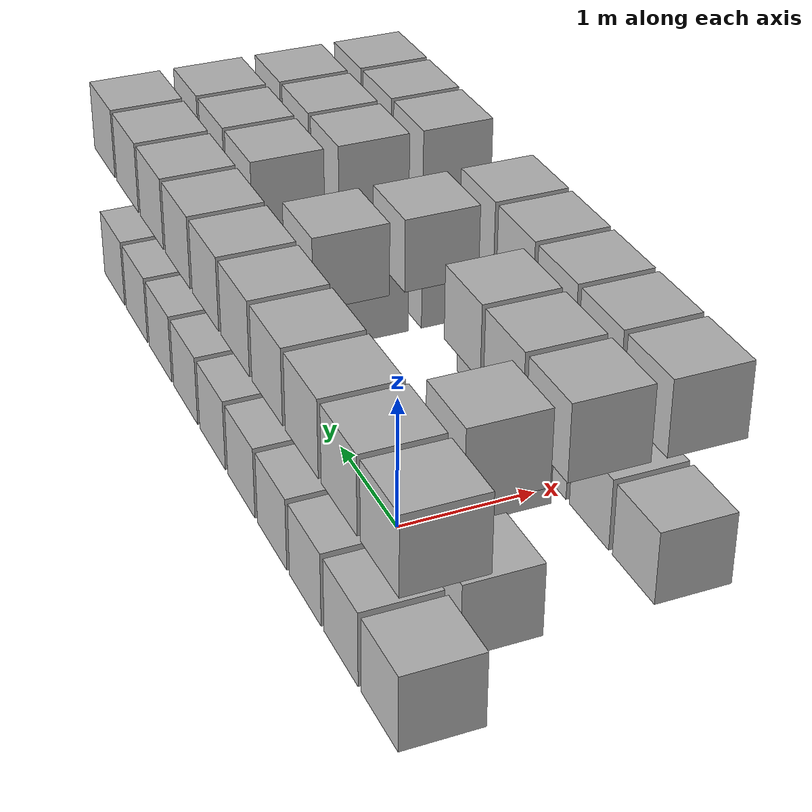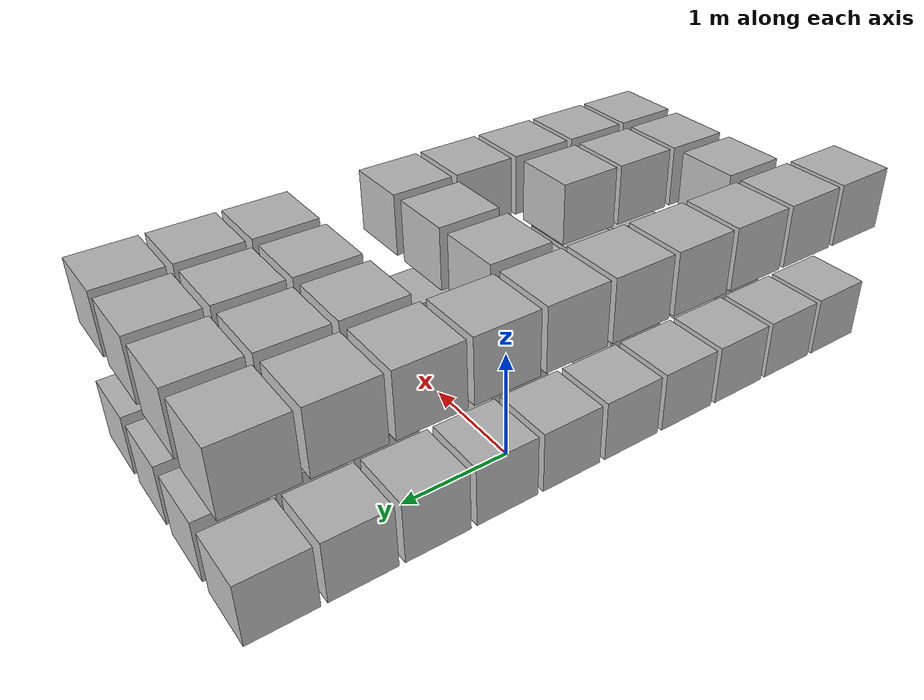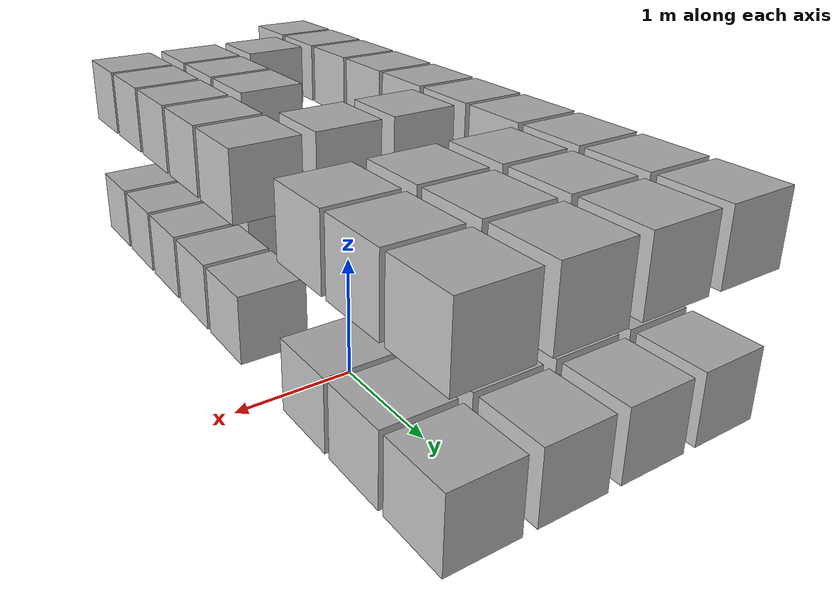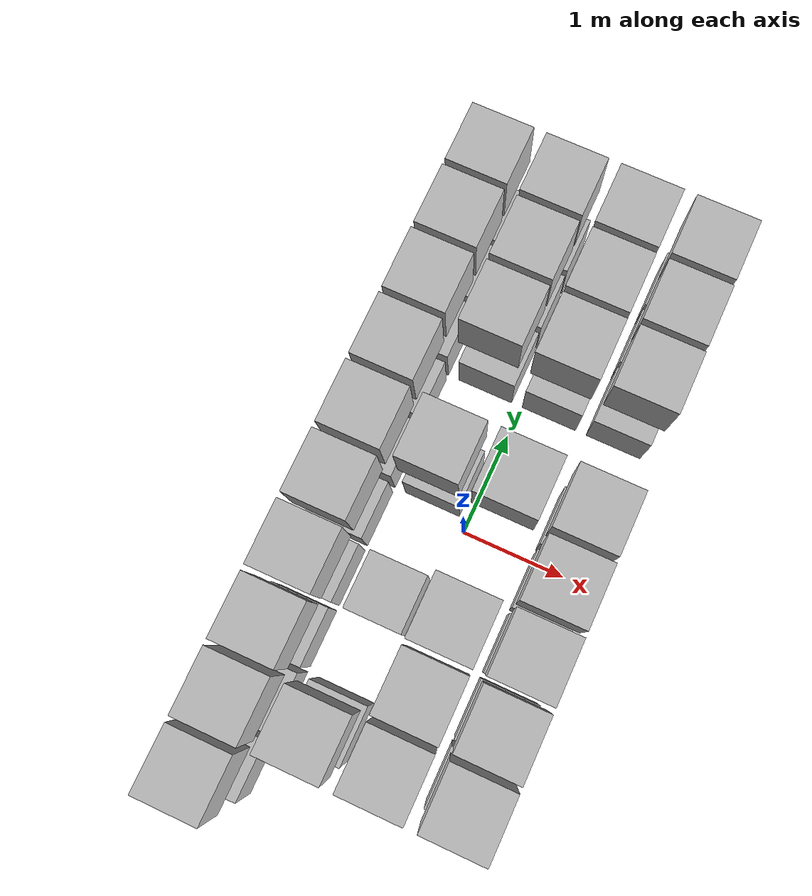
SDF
<sdf version="1.5">
 <world name="default">
  <include><uri>model://sun</uri></include>
  <include><uri>model://block50</uri><pose>-0.9 -2.4545454545454546 1.0 0 0 0</pose></include>
  <include><uri>model://block50</uri><pose>-0.9 -1.9090909090909092 1.0 0 0 0</pose></include>
  <include><uri>model://block50</uri><pose>-0.30000000000000004 -1.9090909090909092 1.0 0 0 0</pose></include>
  <include><uri>model://block50</uri><pose>0.8999999999999999 -1.9090909090909092 1.0 0 0 0</pose></include>
  <include><uri>model://block50</uri><pose>-0.9 -1.3636363636363638 1.0 0 0 0</pose></include>
  <include><uri>model://block50</uri><pose>0.8999999999999999 -1.3636363636363638 1.0 0 0 0</pose></include>
  <include><uri>model://block50</uri><pose>-0.9 -0.8181818181818183 1.0 0 0 0</pose></include>
  <include><uri>model://block50</uri><pose>-0.30000000000000004 -0.8181818181818183 1.0 0 0 0</pose></include>
  <include><uri>model://block50</uri><pose>0.2999999999999998 -0.8181818181818183 1.0 0 0 0</pose></include>
  <include><uri>model://block50</uri><pose>0.8999999999999999 -0.8181818181818183 1.0 0 0 0</pose></include>
  <include><uri>model://block50</uri><pose>-0.9 -0.27272727272727293 1.0 0 0 0</pose></include>
  <include><uri>model://block50</uri><pose>0.8999999999999999 -0.27272727272727293 1.0 0 0 0</pose></include>
  <include><uri>model://block50</uri><pose>-0.9 0.2727272727272725 1.0 0 0 0</pose></include>
  <include><uri>model://block50</uri><pose>-0.30000000000000004 0.2727272727272725 1.0 0 0 0</pose></include>
  <include><uri>model://block50</uri><pose>0.8999999999999999 0.2727272727272725 1.0 0 0 0</pose></include>
  <include><uri>model://block50</uri><pose>-0.9 0.8181818181818179 1.0 0 0 0</pose></include>
  <include><uri>model://block50</uri><pose>-0.9 1.3636363636363633 1.0 0 0 0</pose></include>
  <include><uri>model://block50</uri><pose>-0.30000000000000004 1.3636363636363633 1.0 0 0 0</pose></include>
  <include><uri>model://block50</uri><pose>0.2999999999999998 1.3636363636363633 1.0 0 0 0</pose></include>
  <include><uri>model://block50</uri><pose>0.8999999999999999 1.3636363636363633 1.0 0 0 0</pose></include>
  <include><uri>model://block50</uri><pose>-0.9 1.9090909090909083 1.0 0 0 0</pose></include>
  <include><uri>model://block50</uri><pose>-0.30000000000000004 1.9090909090909083 1.0 0 0 0</pose></include>
  <include><uri>model://block50</uri><pose>0.2999999999999998 1.9090909090909083 1.0 0 0 0</pose></include>
  <include><uri>model://block50</uri><pose>0.8999999999999999 1.9090909090909083 1.0 0 0 0</pose></include>
  <include><uri>model://block50</uri><pose>-0.9 2.454545454545454 1.0 0 0 0</pose></include>
  <include><uri>model://block50</uri><pose>-0.30000000000000004 2.454545454545454 1.0 0 0 0</pose></include>
  <include><uri>model://block50</uri><pose>0.2999999999999998 2.454545454545454 1.0 0 0 0</pose></include>
  <include><uri>model://block50</uri><pose>0.8999999999999999 2.454545454545454 1.0 0 0 0</pose></include>
  <include><uri>model://block50</uri><pose>-0.9 -2.4545454545454546 2.0 0 0 0</pose></include>
  <include><uri>model://block50</uri><pose>-0.9 -1.9090909090909092 2.0 0 0 0</pose></include>
  <include><uri>model://block50</uri><pose>-0.30000000000000004 -1.9090909090909092 2.0 0 0 0</pose></include>
  <include><uri>model://block50</uri><pose>0.2999999999999998 -1.9090909090909092 2.0 0 0 0</pose></include>
  <include><uri>model://block50</uri><pose>0.8999999999999999 -1.9090909090909092 2.0 0 0 0</pose></include>
  <include><uri>model://block50</uri><pose>-0.9 -1.3636363636363638 2.0 0 0 0</pose></include>
  <include><uri>model://block50</uri><pose>0.2999999999999998 -1.3636363636363638 2.0 0 0 0</pose></include>
  <include><uri>model://block50</uri><pose>0.8999999999999999 -1.3636363636363638 2.0 0 0 0</pose></include>
  <include><uri>model://block50</uri><pose>-0.9 -0.8181818181818183 2.0 0 0 0</pose></include>
  <include><uri>model://block50</uri><pose>0.2999999999999998 -0.8181818181818183 2.0 0 0 0</pose></include>
  <include><uri>model://block50</uri><pose>0.8999999999999999 -0.8181818181818183 2.0 0 0 0</pose></include>
  <include><uri>model://block50</uri><pose>-0.9 -0.27272727272727293 2.0 0 0 0</pose></include>
  <include><uri>model://block50</uri><pose>0.8999999999999999 -0.27272727272727293 2.0 0 0 0</pose></include>
  <include><uri>model://block50</uri><pose>-0.9 0.2727272727272725 2.0 0 0 0</pose></include>
  <include><uri>model://block50</uri><pose>-0.30000000000000004 0.2727272727272725 2.0 0 0 0</pose></include>
  <include><uri>model://block50</uri><pose>0.2999999999999998 0.2727272727272725 2.0 0 0 0</pose></include>
  <include><uri>model://block50</uri><pose>0.8999999999999999 0.2727272727272725 2.0 0 0 0</pose></include>
  <include><uri>model://block50</uri><pose>-0.9 0.8181818181818179 2.0 0 0 0</pose></include>
  <include><uri>model://block50</uri><pose>-0.9 1.3636363636363633 2.0 0 0 0</pose></include>
  <include><uri>model://block50</uri><pose>-0.30000000000000004 1.3636363636363633 2.0 0 0 0</pose></include>
  <include><uri>model://block50</uri><pose>0.2999999999999998 1.3636363636363633 2.0 0 0 0</pose></include>
  <include><uri>model://block50</uri><pose>0.8999999999999999 1.3636363636363633 2.0 0 0 0</pose></include>
  <include><uri>model://block50</uri><pose>-0.9 1.9090909090909083 2.0 0 0 0</pose></include>
  <include><uri>model://block50</uri><pose>-0.30000000000000004 1.9090909090909083 2.0 0 0 0</pose></include>
  <include><uri>model://block50</uri><pose>0.2999999999999998 1.9090909090909083 2.0 0 0 0</pose></include>
  <include><uri>model://block50</uri><pose>0.8999999999999999 1.9090909090909083 2.0 0 0 0</pose></include>
  <include><uri>model://block50</uri><pose>-0.9 2.454545454545454 2.0 0 0 0</pose></include>
  <include><uri>model://block50</uri><pose>-0.30000000000000004 2.454545454545454 2.0 0 0 0</pose></include>
  <include><uri>model://block50</uri><pose>0.2999999999999998 2.454545454545454 2.0 0 0 0</pose></include>
  <include><uri>model://block50</uri><pose>0.8999999999999999 2.454545454545454 2.0 0 0 0</pose></include>
  <physics name="default_physics" default="0" type="ode">
   <gravity>0 0 -9.8066</gravity>
   <ode>
    <solver>
     <type>quick</type>
     <iters>30</iters>
     <sor>1.3</sor>
     <use_dynamic_moi_rescaling>0</use_dynamic_moi_rescaling>
    </solver>
    <constraints>
     <cfm>0</cfm>
     <erp>0.2</erp>
     <contact_max_correcting_vel>100</contact_max_correcting_vel>
     <contact_surface_layer>0.001</contact_surface_layer>
    </constraints>
   </ode>
   <max_step_size>0.002</max_step_size>
   <real_time_factor>1</real_time_factor>
   <real_time_update_rate>500</real_time_update_rate>
   <magnetic_field>6.0e-6 2.3e-5 -4.2e-5</magnetic_field>
  </physics>
 </world>
</sdf>

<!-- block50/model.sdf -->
<sdf version="1.5">
  <model name="block50">
    <static>true</static>
    <link name="link">
      <collision name="collision">
        <geometry>
          <box>
            <size>0.5 0.5 0.5</size>
          </box>
        </geometry>
      </collision>
      <visual name="visual">
        <cast_shadows>false</cast_shadows>
        <geometry>
          <box>
            <size>0.5 0.5 0.5</size>
          </box>
        </geometry>
        <material>
          <script>
            <uri>model://block50/materials/scripts</uri>
            <uri>model://block50/materials/textures</uri>
            <name>vrc/block50</name>
          </script>
        </material>
      </visual>
    </link>
  </model>
</sdf>
